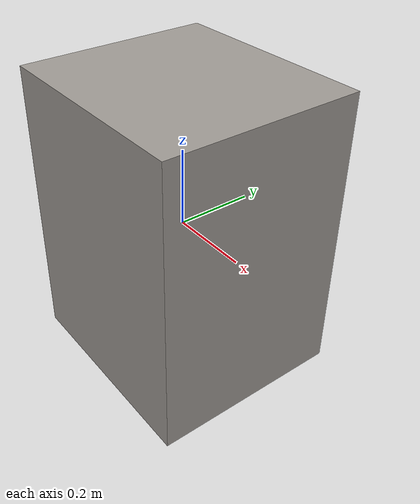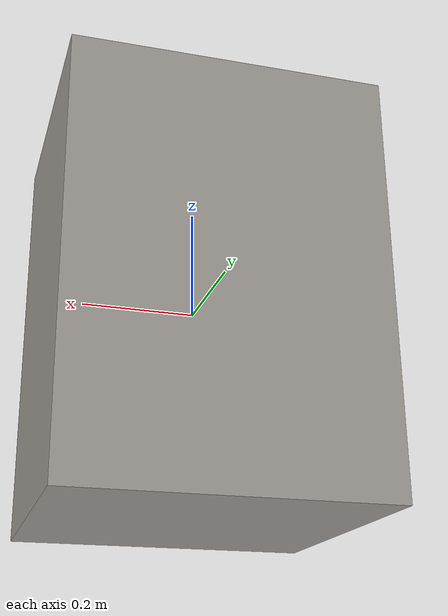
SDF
<?xml version="1.0"?>
<sdf version="1.6">
  <model name="Drawer">
    <static>true</static>
    <link name="link">
      <collision name="col">
        <geometry>
          <box>
            <size>0.55 0.5 0.75</size>
          </box>
        </geometry>
      </collision>
      <visual name="vis">
        <geometry>
          <box>
            <size>0.55 0.5 0.75</size>
          </box>
        </geometry>
        <material>
          <ambient>0.62 0.6 0.58 1</ambient>
          <diffuse>0.62 0.6 0.58 1</diffuse>
        </material>
      </visual>
    </link>
  </model>
</sdf>
